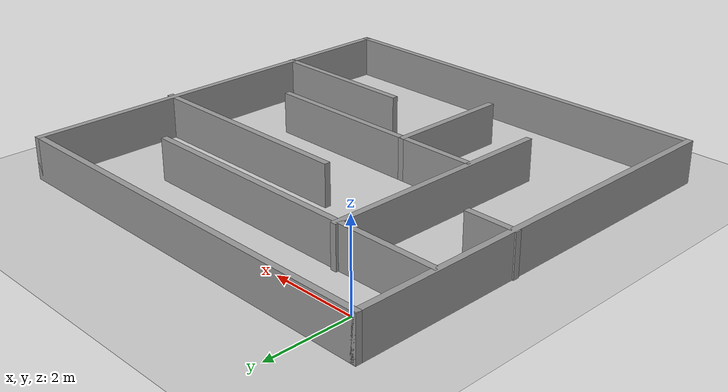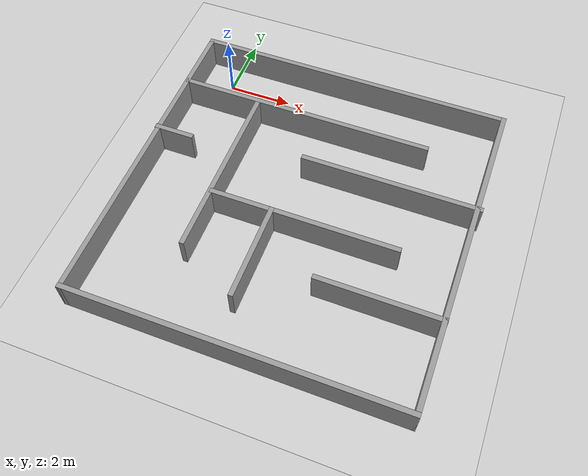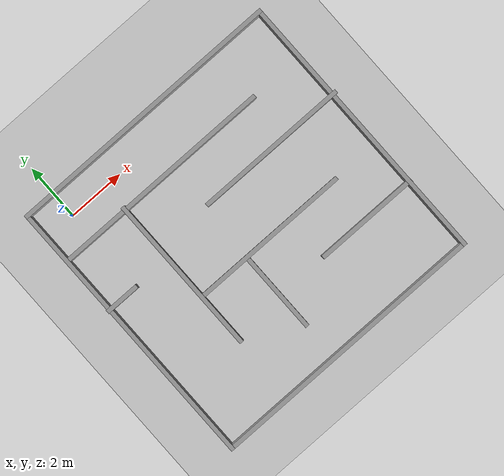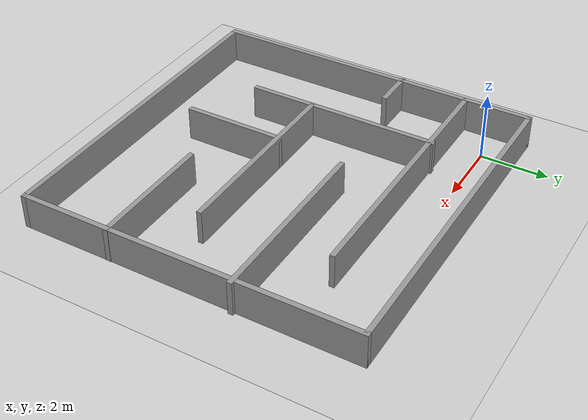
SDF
<sdf version="1.6">
 <world name="default">
  <light name="sun" type="directional">
   <pose>0 0 10 0 -0 0</pose>
   <diffuse>0.8 0.8 0.8 1</diffuse>
   <specular>0.2 0.2 0.2 1</specular>
   <attenuation>
    <range>1000</range>
    <constant>0.9</constant>
    <linear>0.01</linear>
    <quadratic>0.001</quadratic>
   </attenuation>
   <direction>-0.5 0.1 -0.9</direction>
  </light>
  <model name="ground_plane">
   <static>1</static>
   <link name="link">
    <collision name="collision">
     <geometry><plane><normal>0 0 1</normal><size>100 100</size></plane></geometry>
     <surface>
      <contact><collide_bitmask>65535</collide_bitmask></contact>
      <friction><ode><mu>100</mu><mu2>50</mu2></ode></friction>
     </surface>
    </collision>
    <visual name="visual">
     <cast_shadows>0</cast_shadows>
     <geometry><plane><normal>0 0 1</normal><size>100 100</size></plane></geometry>
     <material>
      <script><uri>file://media/materials/scripts/gazebo.material</uri><name>Gazebo/Grey</name></script>
     </material>
    </visual>
   </link>
  </model>
  <gravity>0 0 -9.8</gravity>
  <magnetic_field>6e-06 2.3e-05 -4.2e-05</magnetic_field>
  <atmosphere type="adiabatic"/>
  <physics name="default_physics" default="0" type="ode">
   <max_step_size>0.001</max_step_size>
   <real_time_factor>1</real_time_factor>
   <real_time_update_rate>1000</real_time_update_rate>
  </physics>
  <scene><ambient>0.4 0.4 0.4 1</ambient><background>0.7 0.7 0.7 1</background><shadows>1</shadows></scene>
  <audio><device>default</device></audio>
  <spherical_coordinates>
   <surface_model>EARTH_WGS84</surface_model>
   <latitude_deg>0</latitude_deg>
   <longitude_deg>0</longitude_deg>
   <elevation>0</elevation>
   <heading_deg>0</heading_deg>
  </spherical_coordinates>
  <model name="maze">
   <pose>3.88687 -4.01526 0 0 -0 0</pose>
   <link name="Wall_0">
    <collision name="Wall_0_Collision">
     <geometry><box><size>10 0.15 1</size></box></geometry>
     <pose>0 0 0.5 0 -0 0</pose>
    </collision>
    <visual name="Wall_0_Visual">
     <pose>0 0 0.5 0 -0 0</pose>
     <geometry><box><size>10 0.15 1</size></box></geometry>
     <material>
      <script><uri>file://media/materials/scripts/gazebo.material</uri><name>Gazebo/Grey</name></script>
      <ambient>1 1 1 1</ambient>
     </material>
     <meta><layer>0</layer></meta>
    </visual>
    <pose>-0.027 4.925 0 0 -0 0</pose>
   </link>
   <link name="Wall_13">
    <collision name="Wall_13_Collision">
     <geometry><box><size>5.5 0.15 1</size></box></geometry>
     <pose>0 0 0.5 0 -0 0</pose>
    </collision>
    <visual name="Wall_13_Visual">
     <pose>0 0 0.5 0 -0 0</pose>
     <geometry><box><size>5.5 0.15 1</size></box></geometry>
     <material>
      <script><uri>file://media/materials/scripts/gazebo.material</uri><name>Gazebo/Grey</name></script>
      <ambient>1 1 1 1</ambient>
     </material>
     <meta><layer>0</layer></meta>
    </visual>
    <pose>2.308 1.405 0 0 -0 3.14159</pose>
   </link>
   <link name="Wall_15">
    <collision name="Wall_15_Collision">
     <geometry><box><size>5.75 0.15 1</size></box></geometry>
     <pose>0 0 0.5 0 -0 0</pose>
    </collision>
    <visual name="Wall_15_Visual">
     <pose>0 0 0.5 0 -0 0</pose>
     <geometry><box><size>5.75 0.15 1</size></box></geometry>
     <material>
      <script><uri>file://media/materials/scripts/gazebo.material</uri><name>Gazebo/Grey</name></script>
      <ambient>1 1 1 1</ambient>
     </material>
     <meta><layer>0</layer></meta>
    </visual>
    <pose>-2.487 0.269 0 0 -0 -1.5708</pose>
   </link>
   <link name="Wall_17">
    <collision name="Wall_17_Collision">
     <geometry><box><size>5.75 0.15 1</size></box></geometry>
     <pose>0 0 0.5 0 -0 0</pose>
    </collision>
    <visual name="Wall_17_Visual">
     <pose>0 0 0.5 0 -0 0</pose>
     <geometry><box><size>5.75 0.15 1</size></box></geometry>
     <material>
      <script><uri>file://media/materials/scripts/gazebo.material</uri><name>Gazebo/Grey</name></script>
      <ambient>1 1 1 1</ambient>
     </material>
     <meta><layer>0</layer></meta>
    </visual>
    <pose>0.373 -0.682 0 0 -0 0</pose>
   </link>
   <link name="Wall_19">
    <collision name="Wall_19_Collision">
     <geometry><box><size>3 0.15 1</size></box></geometry>
     <pose>0 0 0.5 0 -0 0</pose>
    </collision>
    <visual name="Wall_19_Visual">
     <pose>0 0 0.5 0 -0 0</pose>
     <geometry><box><size>3 0.15 1</size></box></geometry>
     <material>
      <script><uri>file://media/materials/scripts/gazebo.material</uri><name>Gazebo/Grey</name></script>
      <ambient>1 1 1 1</ambient>
     </material>
     <meta><layer>0</layer></meta>
    </visual>
    <pose>-0.582 -2.107 0 0 -0 -1.5708</pose>
   </link>
   <link name="Wall_2">
    <collision name="Wall_2_Collision">
     <geometry><box><size>10 0.15 1</size></box></geometry>
     <pose>0 0 0.5 0 -0 0</pose>
    </collision>
    <visual name="Wall_2_Visual">
     <pose>0 0 0.5 0 -0 0</pose>
     <geometry><box><size>10 0.15 1</size></box></geometry>
     <material>
      <script><uri>file://media/materials/scripts/gazebo.material</uri><name>Gazebo/Grey</name></script>
      <ambient>1 1 1 1</ambient>
     </material>
     <meta><layer>0</layer></meta>
    </visual>
    <pose>4.898 0 0 0 -0 -1.5708</pose>
   </link>
   <link name="Wall_23">
    <collision name="Wall_23_Collision">
     <geometry><box><size>3.75 0.15 1</size></box></geometry>
     <pose>0 0 0.5 0 -0 0</pose>
    </collision>
    <visual name="Wall_23_Visual">
     <pose>0 0 0.5 0 -0 0</pose>
     <geometry><box><size>3.75 0.15 1</size></box></geometry>
     <material>
      <script><uri>file://media/materials/scripts/gazebo.material</uri><name>Gazebo/Grey</name></script>
      <ambient>1 1 1 1</ambient>
     </material>
     <meta><layer>0</layer></meta>
    </visual>
    <pose>3.108 -2.287 0 0 -0 3.14159</pose>
   </link>
   <link name="Wall_25">
    <collision name="Wall_25_Collision">
     <geometry><box><size>1.25 0.15 1</size></box></geometry>
     <pose>0 0 0.5 0 -0 0</pose>
    </collision>
    <visual name="Wall_25_Visual">
     <pose>0 0 0.5 0 -0 0</pose>
     <geometry><box><size>1.25 0.15 1</size></box></geometry>
     <material>
      <script><uri>file://media/materials/scripts/gazebo.material</uri><name>Gazebo/Grey</name></script>
      <ambient>1 1 1 1</ambient>
     </material>
     <meta><layer>0</layer></meta>
    </visual>
    <pose>-4.433 0.949 0 0 -0 0</pose>
   </link>
   <link name="Wall_5">
    <collision name="Wall_5_Collision">
     <geometry><box><size>10 0.15 1</size></box></geometry>
     <pose>0 0 0.5 0 -0 0</pose>
    </collision>
    <visual name="Wall_5_Visual">
     <pose>0 0 0.5 0 -0 0</pose>
     <geometry><box><size>10 0.15 1</size></box></geometry>
     <material>
      <script><uri>file://media/materials/scripts/gazebo.material</uri><name>Gazebo/Grey</name></script>
      <ambient>1 1 1 1</ambient>
     </material>
     <meta><layer>0</layer></meta>
    </visual>
    <pose>-4.952 0 0 0 -0 -1.5708</pose>
   </link>
   <link name="Wall_7">
    <collision name="Wall_7_Collision">
     <geometry><box><size>10 0.15 1</size></box></geometry>
     <pose>0 0 0.5 0 -0 0</pose>
    </collision>
    <visual name="Wall_7_Visual">
     <pose>0 0 0.5 0 -0 0</pose>
     <geometry><box><size>10 0.15 1</size></box></geometry>
     <material>
      <script><uri>file://media/materials/scripts/gazebo.material</uri><name>Gazebo/Grey</name></script>
      <ambient>1 1 1 1</ambient>
     </material>
     <meta><layer>0</layer></meta>
    </visual>
    <pose>-0.027 -4.925 0 0 -0 0</pose>
   </link>
   <link name="Wall_9">
    <collision name="Wall_9_Collision">
     <geometry><box><size>8 0.15 1</size></box></geometry>
     <pose>0 0 0.5 0 -0 0</pose>
    </collision>
    <visual name="Wall_9_Visual">
     <pose>0 0 0.5 0 -0 0</pose>
     <geometry><box><size>8 0.15 1</size></box></geometry>
     <material>
      <script><uri>file://media/materials/scripts/gazebo.material</uri><name>Gazebo/Grey</name></script>
      <ambient>1 1 1 1</ambient>
     </material>
     <meta><layer>0</layer></meta>
    </visual>
    <pose>-0.982 3.008 0 0 -0 0</pose>
   </link>
   <static>1</static>
  </model>
 </world>
</sdf>
